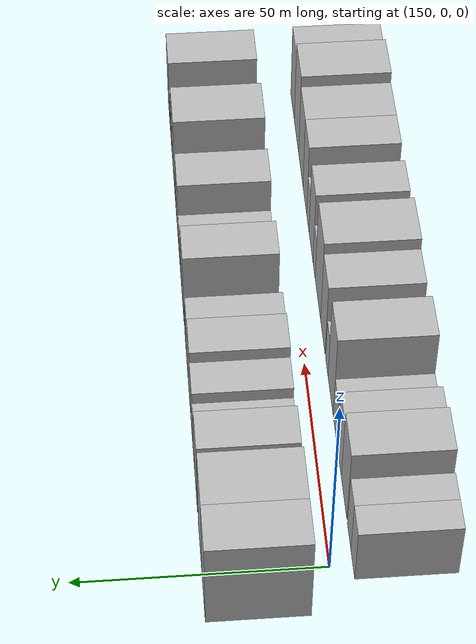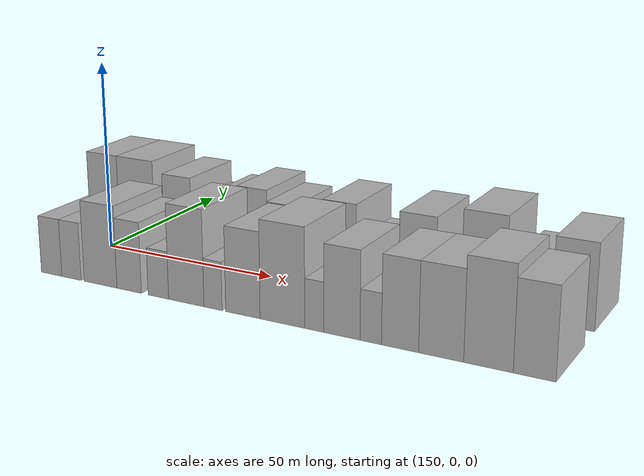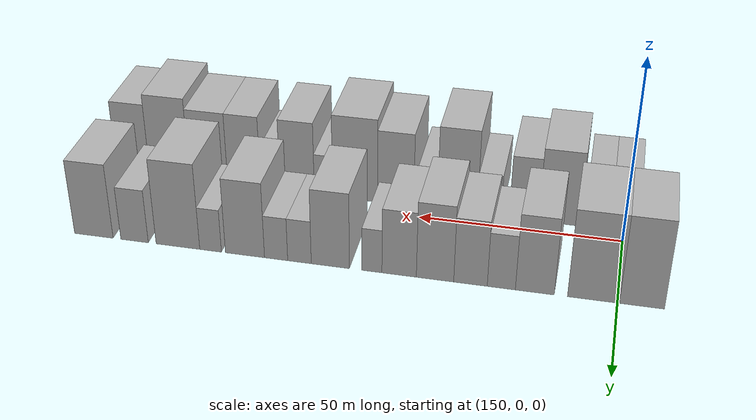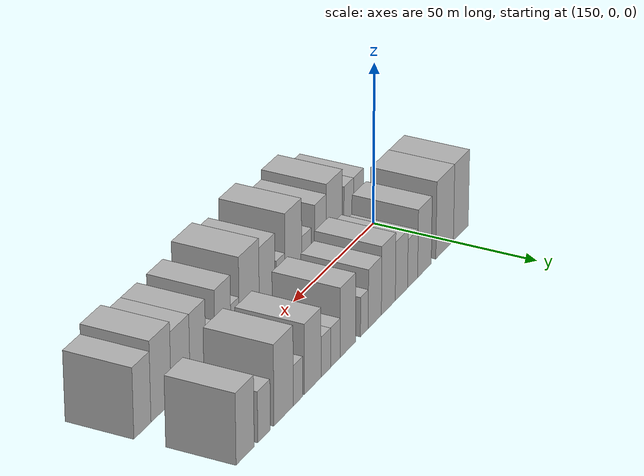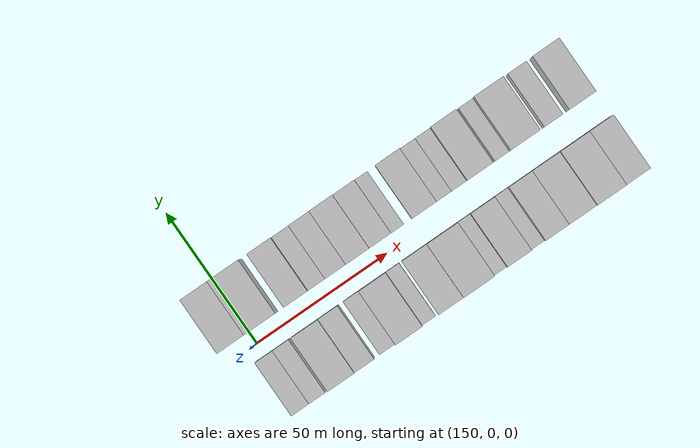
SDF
<sdf version="1.6">
 <world name="default">
  <model name="building_14">
   <static>1</static>
   <pose>144.5431 14.5000 0 0.000000 0.000000 1.570796</pose>
   <link name="link">
    <pose>0 0 12.00 0 0 0</pose>
    <collision name="collision"><geometry><box><size>20.0000 10.0241 24.0000</size></box></geometry></collision>
    <visual name="visual">
     <cast_shadows>0</cast_shadows>
     <geometry><box><size>20.0000 10.0241 24.0000</size></box></geometry>
     <material>
      <script>
       <uri>model://HANNAS_wall/materials/scripts</uri>
       <uri>model://HANNAS_wall/materials/textures</uri>
       <name>vrc/HANNAS_wall</name>
      </script>
     </material>
    </visual>
   </link>
  </model>
  <model name="building_15">
   <static>1</static>
   <pose>155.4174 14.5000 0 0.000000 0.000000 1.570796</pose>
   <link name="link">
    <pose>0 0 12.00 0 0 0</pose>
    <collision name="collision"><geometry><box><size>20.0000 11.7245 24.0000</size></box></geometry></collision>
    <visual name="visual">
     <cast_shadows>0</cast_shadows>
     <geometry><box><size>20.0000 11.7245 24.0000</size></box></geometry>
     <material>
      <script>
       <uri>model://HANNAS_wall/materials/scripts</uri>
       <uri>model://HANNAS_wall/materials/textures</uri>
       <name>vrc/HANNAS_wall</name>
      </script>
     </material>
    </visual>
   </link>
  </model>
  <model name="building_16">
   <static>1</static>
   <pose>168.7396 14.5000 0 0.000000 0.000000 1.570796</pose>
   <link name="link">
    <pose>0 0 10.50 0 0 0</pose>
    <collision name="collision"><geometry><box><size>20.0000 8.9199 21.0000</size></box></geometry></collision>
    <visual name="visual">
     <cast_shadows>0</cast_shadows>
     <geometry><box><size>20.0000 8.9199 21.0000</size></box></geometry>
     <material>
      <script>
       <uri>model://HANNAS_wall/materials/scripts</uri>
       <uri>model://HANNAS_wall/materials/textures</uri>
       <name>vrc/HANNAS_wall</name>
      </script>
     </material>
    </visual>
   </link>
  </model>
  <model name="building_17">
   <static>1</static>
   <pose>176.4517 14.5000 0 0.000000 0.000000 1.570796</pose>
   <link name="link">
    <pose>0 0 7.50 0 0 0</pose>
    <collision name="collision"><geometry><box><size>20.0000 6.5042 15.0000</size></box></geometry></collision>
    <visual name="visual">
     <cast_shadows>0</cast_shadows>
     <geometry><box><size>20.0000 6.5042 15.0000</size></box></geometry>
     <material>
      <script>
       <uri>model://HANNAS_wall/materials/scripts</uri>
       <uri>model://HANNAS_wall/materials/textures</uri>
       <name>vrc/HANNAS_wall</name>
      </script>
     </material>
    </visual>
   </link>
  </model>
  <model name="building_18">
   <static>1</static>
   <pose>183.6140 14.5000 0 0.000000 0.000000 1.570796</pose>
   <link name="link">
    <pose>0 0 9.00 0 0 0</pose>
    <collision name="collision"><geometry><box><size>20.0000 7.8204 18.0000</size></box></geometry></collision>
    <visual name="visual">
     <cast_shadows>0</cast_shadows>
     <geometry><box><size>20.0000 7.8204 18.0000</size></box></geometry>
     <material>
      <script>
       <uri>model://HANNAS_wall/materials/scripts</uri>
       <uri>model://HANNAS_wall/materials/textures</uri>
       <name>vrc/HANNAS_wall</name>
      </script>
     </material>
    </visual>
   </link>
  </model>
  <model name="building_19">
   <static>1</static>
   <pose>191.9246 14.5000 0 0.000000 0.000000 1.570796</pose>
   <link name="link">
    <pose>0 0 10.50 0 0 0</pose>
    <collision name="collision"><geometry><box><size>20.0000 8.8009 21.0000</size></box></geometry></collision>
    <visual name="visual">
     <cast_shadows>0</cast_shadows>
     <geometry><box><size>20.0000 8.8009 21.0000</size></box></geometry>
     <material>
      <script>
       <uri>model://HANNAS_wall/materials/scripts</uri>
       <uri>model://HANNAS_wall/materials/textures</uri>
       <name>vrc/HANNAS_wall</name>
      </script>
     </material>
    </visual>
   </link>
  </model>
  <model name="building_20">
   <static>1</static>
   <pose>200.4165 14.5000 0 0.000000 0.000000 1.570796</pose>
   <link name="link">
    <pose>0 0 9.00 0 0 0</pose>
    <collision name="collision"><geometry><box><size>20.0000 8.1829 18.0000</size></box></geometry></collision>
    <visual name="visual">
     <cast_shadows>0</cast_shadows>
     <geometry><box><size>20.0000 8.1829 18.0000</size></box></geometry>
     <material>
      <script>
       <uri>model://HANNAS_wall/materials/scripts</uri>
       <uri>model://HANNAS_wall/materials/textures</uri>
       <name>vrc/HANNAS_wall</name>
      </script>
     </material>
    </visual>
   </link>
  </model>
  <model name="building_21">
   <static>1</static>
   <pose>206.9117 14.5000 0 0.000000 0.000000 1.570796</pose>
   <link name="link">
    <pose>0 0 6.00 0 0 0</pose>
    <collision name="collision"><geometry><box><size>20.0000 4.8074 12.0000</size></box></geometry></collision>
    <visual name="visual">
     <cast_shadows>0</cast_shadows>
     <geometry><box><size>20.0000 4.8074 12.0000</size></box></geometry>
     <material>
      <script>
       <uri>model://HANNAS_wall/materials/scripts</uri>
       <uri>model://HANNAS_wall/materials/textures</uri>
       <name>vrc/HANNAS_wall</name>
      </script>
     </material>
    </visual>
   </link>
  </model>
  <model name="building_22">
   <static>1</static>
   <pose>216.9380 14.5000 0 0.000000 0.000000 1.570796</pose>
   <link name="link">
    <pose>0 0 10.50 0 0 0</pose>
    <collision name="collision"><geometry><box><size>20.0000 9.2453 21.0000</size></box></geometry></collision>
    <visual name="visual">
     <cast_shadows>0</cast_shadows>
     <geometry><box><size>20.0000 9.2453 21.0000</size></box></geometry>
     <material>
      <script>
       <uri>model://HANNAS_wall/materials/scripts</uri>
       <uri>model://HANNAS_wall/materials/textures</uri>
       <name>vrc/HANNAS_wall</name>
      </script>
     </material>
    </visual>
   </link>
  </model>
  <model name="building_23">
   <static>1</static>
   <pose>224.4472 14.5000 0 0.000000 0.000000 1.570796</pose>
   <link name="link">
    <pose>0 0 6.00 0 0 0</pose>
    <collision name="collision"><geometry><box><size>20.0000 5.7731 12.0000</size></box></geometry></collision>
    <visual name="visual">
     <cast_shadows>0</cast_shadows>
     <geometry><box><size>20.0000 5.7731 12.0000</size></box></geometry>
     <material>
      <script>
       <uri>model://HANNAS_wall/materials/scripts</uri>
       <uri>model://HANNAS_wall/materials/textures</uri>
       <name>vrc/HANNAS_wall</name>
      </script>
     </material>
    </visual>
   </link>
  </model>
  <model name="building_24">
   <static>1</static>
   <pose>230.1848 14.5000 0 0.000000 0.000000 1.570796</pose>
   <link name="link">
    <pose>0 0 6.00 0 0 0</pose>
    <collision name="collision"><geometry><box><size>20.0000 5.7022 12.0000</size></box></geometry></collision>
    <visual name="visual">
     <cast_shadows>0</cast_shadows>
     <geometry><box><size>20.0000 5.7022 12.0000</size></box></geometry>
     <material>
      <script>
       <uri>model://HANNAS_wall/materials/scripts</uri>
       <uri>model://HANNAS_wall/materials/textures</uri>
       <name>vrc/HANNAS_wall</name>
      </script>
     </material>
    </visual>
   </link>
  </model>
  <model name="building_25">
   <static>1</static>
   <pose>237.8894 14.5000 0 0.000000 0.000000 1.570796</pose>
   <link name="link">
    <pose>0 0 10.50 0 0 0</pose>
    <collision name="collision"><geometry><box><size>20.0000 9.7069 21.0000</size></box></geometry></collision>
    <visual name="visual">
     <cast_shadows>0</cast_shadows>
     <geometry><box><size>20.0000 9.7069 21.0000</size></box></geometry>
     <material>
      <script>
       <uri>model://HANNAS_wall/materials/scripts</uri>
       <uri>model://HANNAS_wall/materials/textures</uri>
       <name>vrc/HANNAS_wall</name>
      </script>
     </material>
    </visual>
   </link>
  </model>
  <model name="building_26">
   <static>1</static>
   <pose>246.4669 14.5000 0 0.000000 0.000000 1.570796</pose>
   <link name="link">
    <pose>0 0 6.00 0 0 0</pose>
    <collision name="collision"><geometry><box><size>20.0000 5.4481 12.0000</size></box></geometry></collision>
    <visual name="visual">
     <cast_shadows>0</cast_shadows>
     <geometry><box><size>20.0000 5.4481 12.0000</size></box></geometry>
     <material>
      <script>
       <uri>model://HANNAS_wall/materials/scripts</uri>
       <uri>model://HANNAS_wall/materials/textures</uri>
       <name>vrc/HANNAS_wall</name>
      </script>
     </material>
    </visual>
   </link>
  </model>
  <model name="building_27">
   <static>1</static>
   <pose>254.7174 14.5000 0 0.000000 0.000000 1.570796</pose>
   <link name="link">
    <pose>0 0 12.00 0 0 0</pose>
    <collision name="collision"><geometry><box><size>20.0000 11.0528 24.0000</size></box></geometry></collision>
    <visual name="visual">
     <cast_shadows>0</cast_shadows>
     <geometry><box><size>20.0000 11.0528 24.0000</size></box></geometry>
     <material>
      <script>
       <uri>model://HANNAS_wall/materials/scripts</uri>
       <uri>model://HANNAS_wall/materials/textures</uri>
       <name>vrc/HANNAS_wall</name>
      </script>
     </material>
    </visual>
   </link>
  </model>
  <model name="building_28">
   <static>1</static>
   <pose>265.7575 14.5000 0 0.000000 0.000000 1.570796</pose>
   <link name="link">
    <pose>0 0 7.50 0 0 0</pose>
    <collision name="collision"><geometry><box><size>20.0000 7.0276 15.0000</size></box></geometry></collision>
    <visual name="visual">
     <cast_shadows>0</cast_shadows>
     <geometry><box><size>20.0000 7.0276 15.0000</size></box></geometry>
     <material>
      <script>
       <uri>model://HANNAS_wall/materials/scripts</uri>
       <uri>model://HANNAS_wall/materials/textures</uri>
       <name>vrc/HANNAS_wall</name>
      </script>
     </material>
    </visual>
   </link>
  </model>
  <model name="building_29">
   <static>1</static>
   <pose>276.2618 14.5000 0 0.000000 0.000000 1.570796</pose>
   <link name="link">
    <pose>0 0 10.50 0 0 0</pose>
    <collision name="collision"><geometry><box><size>20.0000 9.9809 21.0000</size></box></geometry></collision>
    <visual name="visual">
     <cast_shadows>0</cast_shadows>
     <geometry><box><size>20.0000 9.9809 21.0000</size></box></geometry>
     <material>
      <script>
       <uri>model://HANNAS_wall/materials/scripts</uri>
       <uri>model://HANNAS_wall/materials/textures</uri>
       <name>vrc/HANNAS_wall</name>
      </script>
     </material>
    </visual>
   </link>
  </model>
  <model name="building_46">
   <static>1</static>
   <pose>150.1850 -14.5000 0 0.000000 0.000000 1.570796</pose>
   <link name="link">
    <pose>0 0 7.50 0 0 0</pose>
    <collision name="collision"><geometry><box><size>20.0000 6.5831 15.0000</size></box></geometry></collision>
    <visual name="visual">
     <cast_shadows>0</cast_shadows>
     <geometry><box><size>20.0000 6.5831 15.0000</size></box></geometry>
     <material>
      <script>
       <uri>model://HANNAS_wall/materials/scripts</uri>
       <uri>model://HANNAS_wall/materials/textures</uri>
       <name>vrc/HANNAS_wall</name>
      </script>
     </material>
    </visual>
   </link>
  </model>
  <model name="building_47">
   <static>1</static>
   <pose>156.5434 -14.5000 0 0.000000 0.000000 1.570796</pose>
   <link name="link">
    <pose>0 0 7.50 0 0 0</pose>
    <collision name="collision"><geometry><box><size>20.0000 6.1337 15.0000</size></box></geometry></collision>
    <visual name="visual">
     <cast_shadows>0</cast_shadows>
     <geometry><box><size>20.0000 6.1337 15.0000</size></box></geometry>
     <material>
      <script>
       <uri>model://HANNAS_wall/materials/scripts</uri>
       <uri>model://HANNAS_wall/materials/textures</uri>
       <name>vrc/HANNAS_wall</name>
      </script>
     </material>
    </visual>
   </link>
  </model>
  <model name="building_48">
   <static>1</static>
   <pose>165.6646 -14.5000 0 0.000000 0.000000 1.570796</pose>
   <link name="link">
    <pose>0 0 10.50 0 0 0</pose>
    <collision name="collision"><geometry><box><size>20.0000 10.1088 21.0000</size></box></geometry></collision>
    <visual name="visual">
     <cast_shadows>0</cast_shadows>
     <geometry><box><size>20.0000 10.1088 21.0000</size></box></geometry>
     <material>
      <script>
       <uri>model://HANNAS_wall/materials/scripts</uri>
       <uri>model://HANNAS_wall/materials/textures</uri>
       <name>vrc/HANNAS_wall</name>
      </script>
     </material>
    </visual>
   </link>
  </model>
  <model name="building_49">
   <static>1</static>
   <pose>174.3967 -14.5000 0 0.000000 0.000000 1.570796</pose>
   <link name="link">
    <pose>0 0 9.00 0 0 0</pose>
    <collision name="collision"><geometry><box><size>20.0000 7.3554 18.0000</size></box></geometry></collision>
    <visual name="visual">
     <cast_shadows>0</cast_shadows>
     <geometry><box><size>20.0000 7.3554 18.0000</size></box></geometry>
     <material>
      <script>
       <uri>model://HANNAS_wall/materials/scripts</uri>
       <uri>model://HANNAS_wall/materials/textures</uri>
       <name>vrc/HANNAS_wall</name>
      </script>
     </material>
    </visual>
   </link>
  </model>
  <model name="building_50">
   <static>1</static>
   <pose>183.0733 -14.5000 0 0.000000 0.000000 1.570796</pose>
   <link name="link">
    <pose>0 0 6.00 0 0 0</pose>
    <collision name="collision"><geometry><box><size>20.0000 5.9979 12.0000</size></box></geometry></collision>
    <visual name="visual">
     <cast_shadows>0</cast_shadows>
     <geometry><box><size>20.0000 5.9979 12.0000</size></box></geometry>
     <material>
      <script>
       <uri>model://HANNAS_wall/materials/scripts</uri>
       <uri>model://HANNAS_wall/materials/textures</uri>
       <name>vrc/HANNAS_wall</name>
      </script>
     </material>
    </visual>
   </link>
  </model>
  <model name="building_51">
   <static>1</static>
   <pose>191.1283 -14.5000 0 0.000000 0.000000 1.570796</pose>
   <link name="link">
    <pose>0 0 12.00 0 0 0</pose>
    <collision name="collision"><geometry><box><size>20.0000 10.1120 24.0000</size></box></geometry></collision>
    <visual name="visual">
     <cast_shadows>0</cast_shadows>
     <geometry><box><size>20.0000 10.1120 24.0000</size></box></geometry>
     <material>
      <script>
       <uri>model://HANNAS_wall/materials/scripts</uri>
       <uri>model://HANNAS_wall/materials/textures</uri>
       <name>vrc/HANNAS_wall</name>
      </script>
     </material>
    </visual>
   </link>
  </model>
  <model name="building_52">
   <static>1</static>
   <pose>198.7082 -14.5000 0 0.000000 0.000000 1.570796</pose>
   <link name="link">
    <pose>0 0 6.00 0 0 0</pose>
    <collision name="collision"><geometry><box><size>20.0000 5.0478 12.0000</size></box></geometry></collision>
    <visual name="visual">
     <cast_shadows>0</cast_shadows>
     <geometry><box><size>20.0000 5.0478 12.0000</size></box></geometry>
     <material>
      <script>
       <uri>model://HANNAS_wall/materials/scripts</uri>
       <uri>model://HANNAS_wall/materials/textures</uri>
       <name>vrc/HANNAS_wall</name>
      </script>
     </material>
    </visual>
   </link>
  </model>
  <model name="building_53">
   <static>1</static>
   <pose>206.8906 -14.5000 0 0.000000 0.000000 1.570796</pose>
   <link name="link">
    <pose>0 0 10.50 0 0 0</pose>
    <collision name="collision"><geometry><box><size>20.0000 9.3170 21.0000</size></box></geometry></collision>
    <visual name="visual">
     <cast_shadows>0</cast_shadows>
     <geometry><box><size>20.0000 9.3170 21.0000</size></box></geometry>
     <material>
      <script>
       <uri>model://HANNAS_wall/materials/scripts</uri>
       <uri>model://HANNAS_wall/materials/textures</uri>
       <name>vrc/HANNAS_wall</name>
      </script>
     </material>
    </visual>
   </link>
  </model>
  <model name="building_54">
   <static>1</static>
   <pose>217.4031 -14.5000 0 0.000000 0.000000 1.570796</pose>
   <link name="link">
    <pose>0 0 12.00 0 0 0</pose>
    <collision name="collision"><geometry><box><size>20.0000 11.7080 24.0000</size></box></geometry></collision>
    <visual name="visual">
     <cast_shadows>0</cast_shadows>
     <geometry><box><size>20.0000 11.7080 24.0000</size></box></geometry>
     <material>
      <script>
       <uri>model://HANNAS_wall/materials/scripts</uri>
       <uri>model://HANNAS_wall/materials/textures</uri>
       <name>vrc/HANNAS_wall</name>
      </script>
     </material>
    </visual>
   </link>
  </model>
  <model name="building_55">
   <static>1</static>
   <pose>225.6625 -14.5000 0 0.000000 0.000000 1.570796</pose>
   <link name="link">
    <pose>0 0 6.00 0 0 0</pose>
    <collision name="collision"><geometry><box><size>20.0000 4.8109 12.0000</size></box></geometry></collision>
    <visual name="visual">
     <cast_shadows>0</cast_shadows>
     <geometry><box><size>20.0000 4.8109 12.0000</size></box></geometry>
     <material>
      <script>
       <uri>model://HANNAS_wall/materials/scripts</uri>
       <uri>model://HANNAS_wall/materials/textures</uri>
       <name>vrc/HANNAS_wall</name>
      </script>
     </material>
    </visual>
   </link>
  </model>
  <model name="building_56">
   <static>1</static>
   <pose>232.6050 -14.5000 0 0.000000 0.000000 1.570796</pose>
   <link name="link">
    <pose>0 0 10.50 0 0 0</pose>
    <collision name="collision"><geometry><box><size>20.0000 9.0741 21.0000</size></box></geometry></collision>
    <visual name="visual">
     <cast_shadows>0</cast_shadows>
     <geometry><box><size>20.0000 9.0741 21.0000</size></box></geometry>
     <material>
      <script>
       <uri>model://HANNAS_wall/materials/scripts</uri>
       <uri>model://HANNAS_wall/materials/textures</uri>
       <name>vrc/HANNAS_wall</name>
      </script>
     </material>
    </visual>
   </link>
  </model>
  <model name="building_57">
   <static>1</static>
   <pose>239.7420 -14.5000 0 0.000000 0.000000 1.570796</pose>
   <link name="link">
    <pose>0 0 6.00 0 0 0</pose>
    <collision name="collision"><geometry><box><size>20.0000 5.2000 12.0000</size></box></geometry></collision>
    <visual name="visual">
     <cast_shadows>0</cast_shadows>
     <geometry><box><size>20.0000 5.2000 12.0000</size></box></geometry>
     <material>
      <script>
       <uri>model://HANNAS_wall/materials/scripts</uri>
       <uri>model://HANNAS_wall/materials/textures</uri>
       <name>vrc/HANNAS_wall</name>
      </script>
     </material>
    </visual>
   </link>
  </model>
  <model name="building_58">
   <static>1</static>
   <pose>246.7498 -14.5000 0 0.000000 0.000000 1.570796</pose>
   <link name="link">
    <pose>0 0 10.50 0 0 0</pose>
    <collision name="collision"><geometry><box><size>20.0000 8.8156 21.0000</size></box></geometry></collision>
    <visual name="visual">
     <cast_shadows>0</cast_shadows>
     <geometry><box><size>20.0000 8.8156 21.0000</size></box></geometry>
     <material>
      <script>
       <uri>model://HANNAS_wall/materials/scripts</uri>
       <uri>model://HANNAS_wall/materials/textures</uri>
       <name>vrc/HANNAS_wall</name>
      </script>
     </material>
    </visual>
   </link>
  </model>
  <model name="building_59">
   <static>1</static>
   <pose>256.3317 -14.5000 0 0.000000 0.000000 1.570796</pose>
   <link name="link">
    <pose>0 0 10.50 0 0 0</pose>
    <collision name="collision"><geometry><box><size>20.0000 10.3483 21.0000</size></box></geometry></collision>
    <visual name="visual">
     <cast_shadows>0</cast_shadows>
     <geometry><box><size>20.0000 10.3483 21.0000</size></box></geometry>
     <material>
      <script>
       <uri>model://HANNAS_wall/materials/scripts</uri>
       <uri>model://HANNAS_wall/materials/textures</uri>
       <name>vrc/HANNAS_wall</name>
      </script>
     </material>
    </visual>
   </link>
  </model>
  <model name="building_60">
   <static>1</static>
   <pose>266.9760 -14.5000 0 0.000000 0.000000 1.570796</pose>
   <link name="link">
    <pose>0 0 12.00 0 0 0</pose>
    <collision name="collision"><geometry><box><size>20.0000 10.9403 24.0000</size></box></geometry></collision>
    <visual name="visual">
     <cast_shadows>0</cast_shadows>
     <geometry><box><size>20.0000 10.9403 24.0000</size></box></geometry>
     <material>
      <script>
       <uri>model://HANNAS_wall/materials/scripts</uri>
       <uri>model://HANNAS_wall/materials/textures</uri>
       <name>vrc/HANNAS_wall</name>
      </script>
     </material>
    </visual>
   </link>
  </model>
  <model name="building_61">
   <static>1</static>
   <pose>276.9986 -14.5000 0 0.000000 0.000000 1.570796</pose>
   <link name="link">
    <pose>0 0 10.50 0 0 0</pose>
    <collision name="collision"><geometry><box><size>20.0000 9.1049 21.0000</size></box></geometry></collision>
    <visual name="visual">
     <cast_shadows>0</cast_shadows>
     <geometry><box><size>20.0000 9.1049 21.0000</size></box></geometry>
     <material>
      <script>
       <uri>model://HANNAS_wall/materials/scripts</uri>
       <uri>model://HANNAS_wall/materials/textures</uri>
       <name>vrc/HANNAS_wall</name>
      </script>
     </material>
    </visual>
   </link>
  </model>
 </world>
</sdf>
